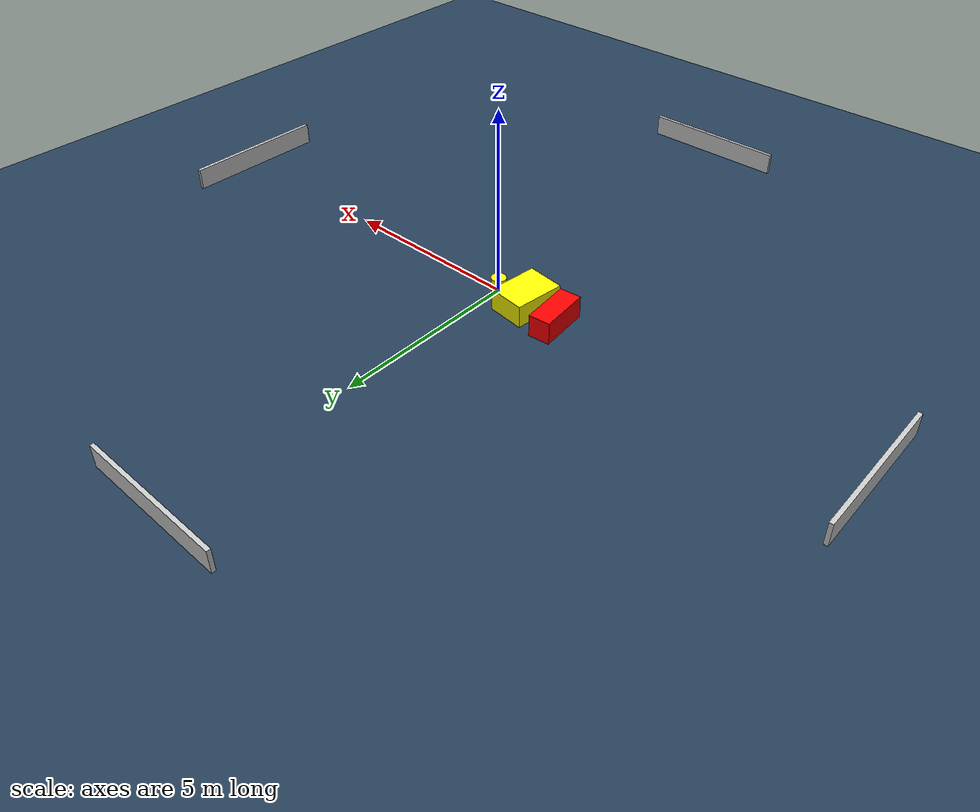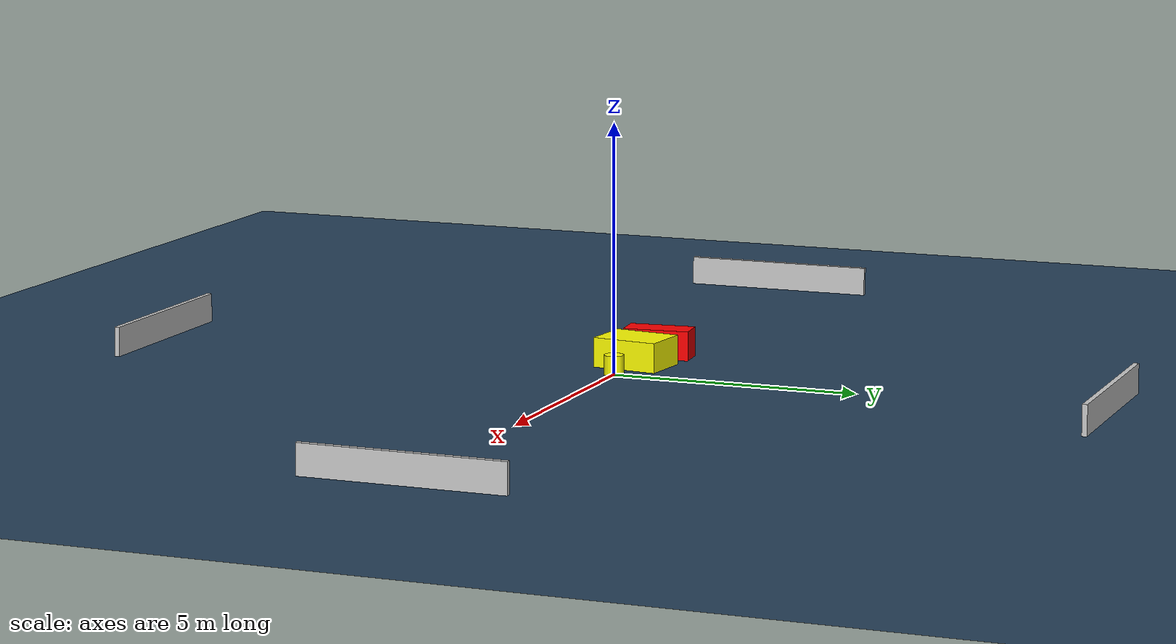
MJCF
<?xml version="1.0" ?>
<mujoco model="generated_environment">
  <option timestep="0.01" integrator="RK4" cone="elliptic"/>
  <default>
    <geom density="1"/>
  </default>
  <asset>
    <texture builtin="gradient" height="3072" name="skybox" rgb1="0.3 0.5 0.7" rgb2="0 0 0" type="skybox" width="512"/>
    <texture builtin="checker" height="300" name="groundplane" rgb1="0.2 0.3 0.4" rgb2="0.1 0.2 0.3" type="2d" width="300"/>
    <material name="groundplane" reflectance="0.2" texrepeat="5 5" texture="groundplane"/>
  </asset>
  <worldbody>
    <light dir="0 0 -1" directional="true" pos="0 0 1.5"/>
    <geom condim="3" friction="0.5 0.005 0.001" material="groundplane" name="floor" pos="0 0 0" size="0 0 0.05" type="plane"/>
    <body name="walls">
      <geom name="wall_1" condim="4" pos="-10.0 0.0 0.3" rgba="0.800000011920929 0.800000011920929 0.800000011920929 1.0" size="0.05 2.0 0.3" type="box"/>
      <geom name="wall_2" condim="4" pos="10.0 0.0 0.3" rgba="0.800000011920929 0.800000011920929 0.800000011920929 1.0" size="0.05 2.0 0.3" type="box"/>
      <geom name="wall_3" condim="4" pos="0.0 -10.0 0.3" rgba="0.800000011920929 0.800000011920929 0.800000011920929 1.0" size="2.0 0.05 0.3" type="box"/>
      <geom name="wall_4" condim="4" pos="0.0 10.0 0.3" rgba="0.800000011920929 0.800000011920929 0.800000011920929 1.0" size="2.0 0.05 0.3" type="box"/>
    </body>
    <body name="robot">
      <joint name="joint_x" type="slide" pos="0 0 0" axis="1 0 0"/>
      <joint name="joint_y" type="slide" pos="0 0 0" axis="0 1 0"/>
      <geom name="robot" type="cylinder" pos="0.0 0.0 0.2" size="0.2 0.2 0.0" mass="5.0" friction="1.0 0.005 0.0001" condim="4" rgba="1.0 1.0 0.0 1.0"/>
    </body>
    <body name="obstacle_1_movable">
      <geom name="obstacle_1_movable" condim="4" pos="-0.9671570544977479 0.08652323579048073 0.3" euler="0 0 263.1756310505403" friction="0.0 0.005 0.001" rgba="1.0 1.0 0.0 1.0" size="0.677136026038019 0.5058955377174781 0.3" type="box" mass="0.1"/>
      <joint type="free"/>
    </body>
    <body name="obstacle_2_static">
      <geom name="obstacle_2_static" condim="4" pos="-1.9829732956434896 0.2039941839540935 0.3" euler="0 0 95.22959410994947" friction="0.0 0.005 0.001" rgba="1.0 0.0 0.0 1.0" size="0.673739920399482 0.28836213863227356 0.3" type="box"/>
    </body>
  </worldbody>
  <actuator>
    <motor name="actuator_x" joint="joint_x" gear="1" ctrlrange="-1 1"/>
    <motor name="actuator_y" joint="joint_y" gear="1" ctrlrange="-1 1"/>
  </actuator>
</mujoco>
